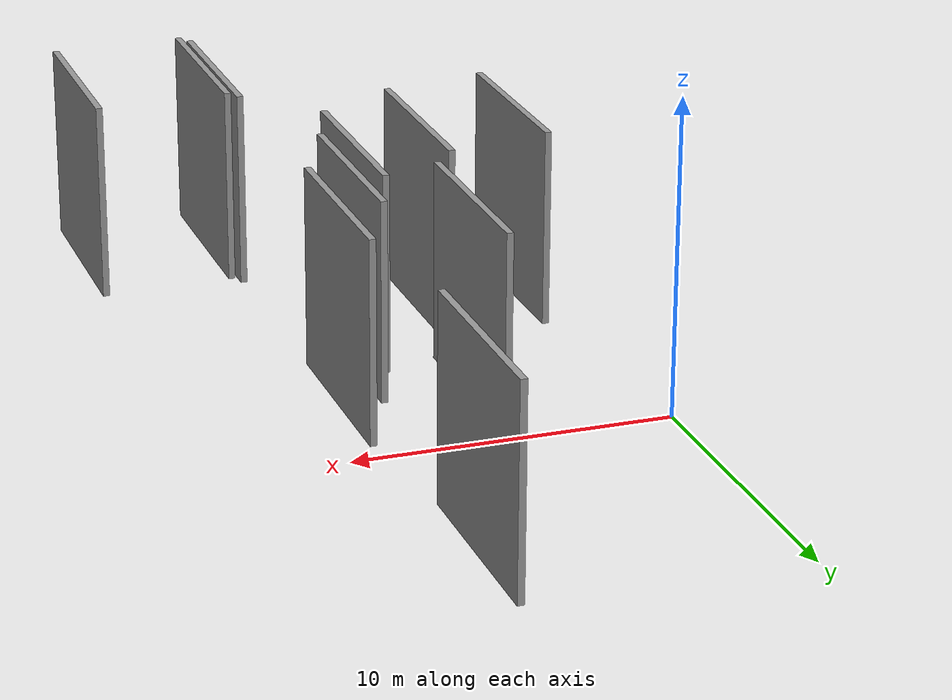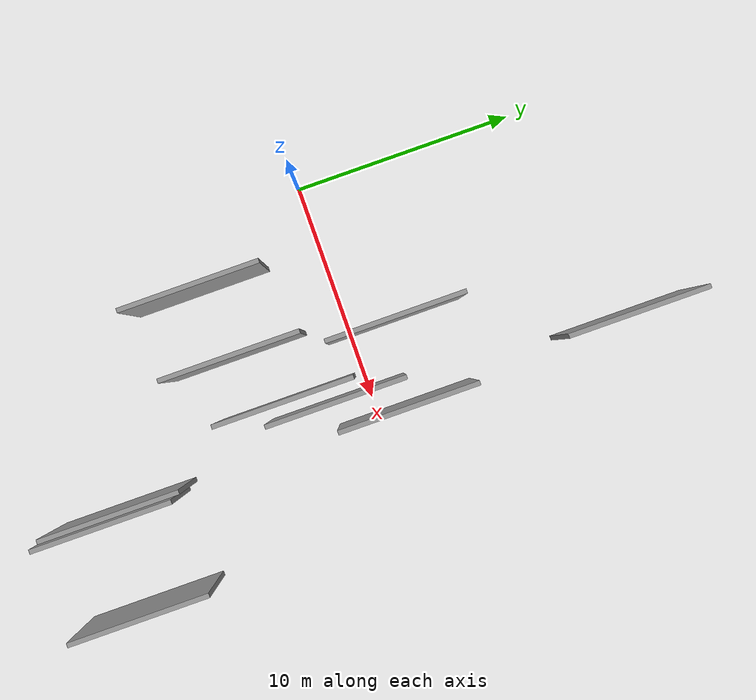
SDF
<sdf version="1.6">
 <world name="default">
  <scene>
   <sky><clouds><speed>12</speed></clouds></sky>
   <ambient>0.4 0.4 0.4 1</ambient>
   <background>0.7 0.7 0.7 1</background>
   <shadows>1</shadows>
  </scene>
  <gravity>0 0 -9.8066</gravity>
  <magnetic_field>6e-06 2.3e-05 -4.2e-05</magnetic_field>
  <physics default="0" name="default_physics" type="ode">
   <ode>
    <solver>
     <type>quick</type>
     <iters>10</iters>
     <sor>1.0</sor>
     <use_dynamic_moi_rescaling>0</use_dynamic_moi_rescaling>
    </solver>
    <constraints>
     <cfm>0</cfm>
     <erp>0.2</erp>
     <contact_max_correcting_vel>100</contact_max_correcting_vel>
     <contact_surface_layer>0.001</contact_surface_layer>
    </constraints>
   </ode>
   <max_step_size>0.004</max_step_size>
   <real_time_factor>1</real_time_factor>
   <real_time_update_rate>250</real_time_update_rate>
  </physics>
  <light name="sun" type="directional">
   <pose>0 0 10 0 0 0</pose>
   <diffuse>0.8 0.8 0.8 1</diffuse>
   <specular>0.2 0.2 0.2 1</specular>
   <attenuation>
    <range>1000</range>
    <constant>0.9</constant>
    <linear>0.01</linear>
    <quadratic>0.001</quadratic>
   </attenuation>
   <direction>-0.5 0.1 -0.9</direction>
  </light>
  <model name="grey_wall_1">
   <static>1</static>
   <pose>3.1607 -5.3754 2.5 0.000000 0.000000 1.570796</pose>
   <link name="link">
    <pose>0 0 3.00 0 0 0</pose>
    <collision name="collision"><geometry><box><size>6.00 0.2 6.00</size></box></geometry></collision>
    <visual name="visual">
     <cast_shadows>0</cast_shadows>
     <geometry><box><size>6.00 0.2 6.00</size></box></geometry>
     <material>
      <script>
       <uri>model://grey_wall/materials/scripts</uri>
       <uri>model://grey_wall/materials/textures</uri>
       <name>vrc/grey_wall</name>
      </script>
     </material>
    </visual>
   </link>
  </model>
  <model name="grey_wall_2">
   <static>1</static>
   <pose>8.7787 -3.3592 2.5 0.000000 0.000000 1.570796</pose>
   <link name="link">
    <pose>0 0 3.00 0 0 0</pose>
    <collision name="collision"><geometry><box><size>6.00 0.2 6.00</size></box></geometry></collision>
    <visual name="visual">
     <cast_shadows>0</cast_shadows>
     <geometry><box><size>6.00 0.2 6.00</size></box></geometry>
     <material>
      <script>
       <uri>model://grey_wall/materials/scripts</uri>
       <uri>model://grey_wall/materials/textures</uri>
       <name>vrc/grey_wall</name>
      </script>
     </material>
    </visual>
   </link>
  </model>
  <model name="grey_wall_3">
   <static>1</static>
   <pose>9.4873 -1.3597 2.5 0.000000 0.000000 1.570796</pose>
   <link name="link">
    <pose>0 0 3.00 0 0 0</pose>
    <collision name="collision"><geometry><box><size>6.00 0.2 6.00</size></box></geometry></collision>
    <visual name="visual">
     <cast_shadows>0</cast_shadows>
     <geometry><box><size>6.00 0.2 6.00</size></box></geometry>
     <material>
      <script>
       <uri>model://grey_wall/materials/scripts</uri>
       <uri>model://grey_wall/materials/textures</uri>
       <name>vrc/grey_wall</name>
      </script>
     </material>
    </visual>
   </link>
  </model>
  <model name="grey_wall_4">
   <static>1</static>
   <pose>10.6742 1.3076 2.5 0.000000 0.000000 1.570796</pose>
   <link name="link">
    <pose>0 0 3.00 0 0 0</pose>
    <collision name="collision"><geometry><box><size>6.00 0.2 6.00</size></box></geometry></collision>
    <visual name="visual">
     <cast_shadows>0</cast_shadows>
     <geometry><box><size>6.00 0.2 6.00</size></box></geometry>
     <material>
      <script>
       <uri>model://grey_wall/materials/scripts</uri>
       <uri>model://grey_wall/materials/textures</uri>
       <name>vrc/grey_wall</name>
      </script>
     </material>
    </visual>
   </link>
  </model>
  <model name="grey_wall_5">
   <static>1</static>
   <pose>10.1077 11.2437 2.5 0.000000 0.000000 1.570796</pose>
   <link name="link">
    <pose>0 0 3.00 0 0 0</pose>
    <collision name="collision"><geometry><box><size>6.00 0.2 6.00</size></box></geometry></collision>
    <visual name="visual">
     <cast_shadows>0</cast_shadows>
     <geometry><box><size>6.00 0.2 6.00</size></box></geometry>
     <material>
      <script>
       <uri>model://grey_wall/materials/scripts</uri>
       <uri>model://grey_wall/materials/textures</uri>
       <name>vrc/grey_wall</name>
      </script>
     </material>
    </visual>
   </link>
  </model>
  <model name="grey_wall_6">
   <static>1</static>
   <pose>7.0595 2.0201 2.5 0.000000 0.000000 1.570796</pose>
   <link name="link">
    <pose>0 0 3.00 0 0 0</pose>
    <collision name="collision"><geometry><box><size>6.00 0.2 6.00</size></box></geometry></collision>
    <visual name="visual">
     <cast_shadows>0</cast_shadows>
     <geometry><box><size>6.00 0.2 6.00</size></box></geometry>
     <material>
      <script>
       <uri>model://grey_wall/materials/scripts</uri>
       <uri>model://grey_wall/materials/textures</uri>
       <name>vrc/grey_wall</name>
      </script>
     </material>
    </visual>
   </link>
  </model>
  <model name="grey_wall_7">
   <static>1</static>
   <pose>11.0453 -11.8443 2.5 0.000000 0.000000 1.570796</pose>
   <link name="link">
    <pose>0 0 3.00 0 0 0</pose>
    <collision name="collision"><geometry><box><size>6.00 0.2 6.00</size></box></geometry></collision>
    <visual name="visual">
     <cast_shadows>0</cast_shadows>
     <geometry><box><size>6.00 0.2 6.00</size></box></geometry>
     <material>
      <script>
       <uri>model://grey_wall/materials/scripts</uri>
       <uri>model://grey_wall/materials/textures</uri>
       <name>vrc/grey_wall</name>
      </script>
     </material>
    </visual>
   </link>
  </model>
  <model name="grey_wall_8">
   <static>1</static>
   <pose>10.7733 -11.4354 2.5 0.000000 0.000000 1.570796</pose>
   <link name="link">
    <pose>0 0 3.00 0 0 0</pose>
    <collision name="collision"><geometry><box><size>6.00 0.2 6.00</size></box></geometry></collision>
    <visual name="visual">
     <cast_shadows>0</cast_shadows>
     <geometry><box><size>6.00 0.2 6.00</size></box></geometry>
     <material>
      <script>
       <uri>model://grey_wall/materials/scripts</uri>
       <uri>model://grey_wall/materials/textures</uri>
       <name>vrc/grey_wall</name>
      </script>
     </material>
    </visual>
   </link>
  </model>
  <model name="grey_wall_9">
   <static>1</static>
   <pose>15.0463 -11.6647 2.5 0.000000 0.000000 1.570796</pose>
   <link name="link">
    <pose>0 0 3.00 0 0 0</pose>
    <collision name="collision"><geometry><box><size>6.00 0.2 6.00</size></box></geometry></collision>
    <visual name="visual">
     <cast_shadows>0</cast_shadows>
     <geometry><box><size>6.00 0.2 6.00</size></box></geometry>
     <material>
      <script>
       <uri>model://grey_wall/materials/scripts</uri>
       <uri>model://grey_wall/materials/textures</uri>
       <name>vrc/grey_wall</name>
      </script>
     </material>
    </visual>
   </link>
  </model>
  <model name="grey_wall_10">
   <static>1</static>
   <pose>6.3408 -4.7766 2.5 0.000000 0.000000 1.570796</pose>
   <link name="link">
    <pose>0 0 3.00 0 0 0</pose>
    <collision name="collision"><geometry><box><size>6.00 0.2 6.00</size></box></geometry></collision>
    <visual name="visual">
     <cast_shadows>0</cast_shadows>
     <geometry><box><size>6.00 0.2 6.00</size></box></geometry>
     <material>
      <script>
       <uri>model://grey_wall/materials/scripts</uri>
       <uri>model://grey_wall/materials/textures</uri>
       <name>vrc/grey_wall</name>
      </script>
     </material>
    </visual>
   </link>
  </model>
 </world>
</sdf>
